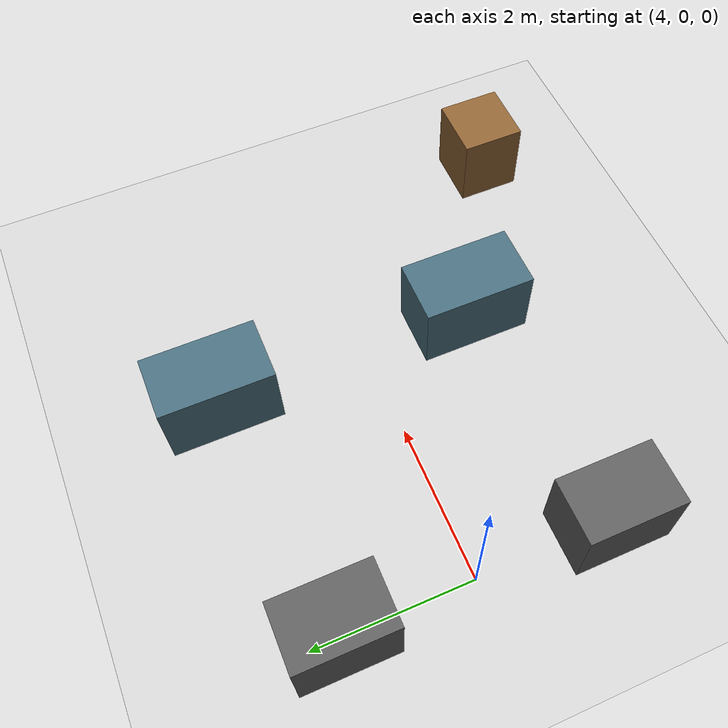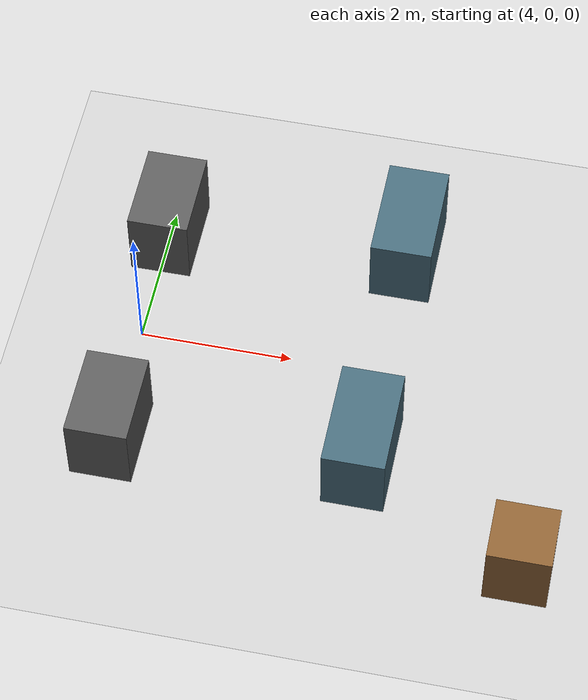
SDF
<sdf version='1.7'>
  <world name='default'>
    <light name='sun' type='directional'>
      <cast_shadows>1</cast_shadows>
      <pose>0 0 10 0 0 0</pose>
      <diffuse>0.8 0.8 0.8 1</diffuse>
      <specular>0.2 0.2 0.2 1</specular>
      <attenuation>
        <range>1000</range>
        <constant>0.9</constant>
        <linear>0.01</linear>
        <quadratic>0.001</quadratic>
      </attenuation>
      <direction>-0.5 0.1 -0.9</direction>
    </light>

    <model name='ground_plane'>
      <static>1</static>
      <link name='link'>
        <collision name='collision'>
          <geometry>
            <plane>
              <normal>0 0 1</normal>
              <size>40 20</size>
            </plane>
          </geometry>
        </collision>
        <visual name='visual'>
          <cast_shadows>0</cast_shadows>
          <geometry>
            <plane>
              <normal>0 0 1</normal>
              <size>40 20</size>
            </plane>
          </geometry>
          <material>
            <script>
              <uri>file://media/materials/scripts/gazebo.material</uri>
              <name>Gazebo/Grey</name>
            </script>
          </material>
        </visual>
      </link>
    </model>

    <model name='gate1_upper_block'>
      <static>1</static>
      <pose>4.0 1.65 0.5 0 0 0</pose>
      <link name='link'>
        <collision name='collision'>
          <geometry><box><size>0.8 1.2 1.0</size></box></geometry>
        </collision>
        <visual name='visual'>
          <geometry><box><size>0.8 1.2 1.0</size></box></geometry>
          <material>
            <ambient>0.36 0.36 0.36 1</ambient>
            <diffuse>0.36 0.36 0.36 1</diffuse>
          </material>
        </visual>
      </link>
    </model>

    <model name='gate1_lower_block'>
      <static>1</static>
      <pose>4.0 -1.65 0.5 0 0 0</pose>
      <link name='link'>
        <collision name='collision'>
          <geometry><box><size>0.8 1.2 1.0</size></box></geometry>
        </collision>
        <visual name='visual'>
          <geometry><box><size>0.8 1.2 1.0</size></box></geometry>
          <material>
            <ambient>0.36 0.36 0.36 1</ambient>
            <diffuse>0.36 0.36 0.36 1</diffuse>
          </material>
        </visual>
      </link>
    </model>

    <model name='gate2_upper_block'>
      <static>1</static>
      <pose>7.2 1.95 0.5 0 0 0</pose>
      <link name='link'>
        <collision name='collision'>
          <geometry><box><size>0.8 1.4 1.0</size></box></geometry>
        </collision>
        <visual name='visual'>
          <geometry><box><size>0.8 1.4 1.0</size></box></geometry>
          <material>
            <ambient>0.28 0.42 0.48 1</ambient>
            <diffuse>0.28 0.42 0.48 1</diffuse>
          </material>
        </visual>
      </link>
    </model>

    <model name='gate2_lower_block'>
      <static>1</static>
      <pose>7.2 -1.35 0.5 0 0 0</pose>
      <link name='link'>
        <collision name='collision'>
          <geometry><box><size>0.8 1.4 1.0</size></box></geometry>
        </collision>
        <visual name='visual'>
          <geometry><box><size>0.8 1.4 1.0</size></box></geometry>
          <material>
            <ambient>0.28 0.42 0.48 1</ambient>
            <diffuse>0.28 0.42 0.48 1</diffuse>
          </material>
        </visual>
      </link>
    </model>

    <model name='late_side_obstacle'>
      <static>1</static>
      <pose>9.4 -2.6 0.5 0 0 0</pose>
      <link name='link'>
        <collision name='collision'>
          <geometry><box><size>0.8 0.8 1.0</size></box></geometry>
        </collision>
        <visual name='visual'>
          <geometry><box><size>0.8 0.8 1.0</size></box></geometry>
          <material>
            <ambient>0.55 0.38 0.2 1</ambient>
            <diffuse>0.55 0.38 0.2 1</diffuse>
          </material>
        </visual>
      </link>
    </model>

    <gravity>0 0 -9.8</gravity>
    <physics type='ode'>
      <max_step_size>0.001</max_step_size>
      <real_time_factor>1</real_time_factor>
      <real_time_update_rate>1000</real_time_update_rate>
    </physics>
    <scene>
      <ambient>0.4 0.4 0.4 1</ambient>
      <background>0.7 0.7 0.7 1</background>
      <shadows>1</shadows>
    </scene>
  </world>
</sdf>
